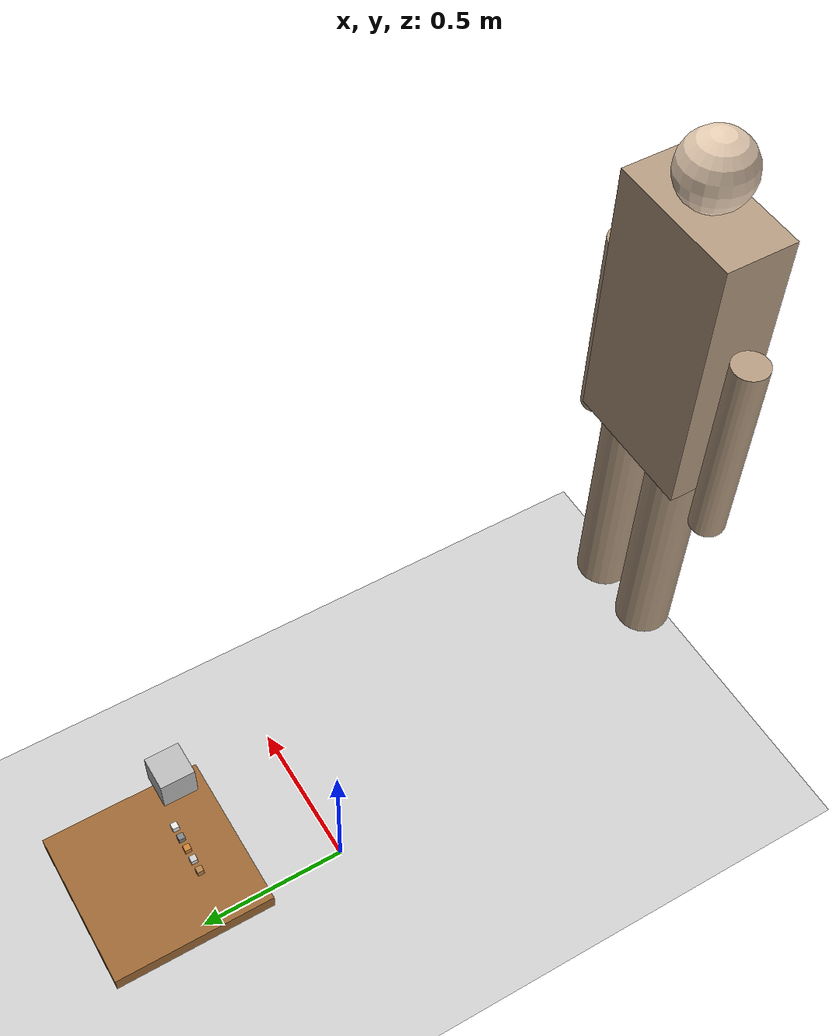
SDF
<sdf version="1.9">
 <world name="empty">
  <physics name="bullet_physics" type="bullet">
   <max_step_size>0.001</max_step_size>
   <real_time_factor>1.0</real_time_factor>
   <real_time_update_rate>1000</real_time_update_rate>
  </physics>
  <plugin filename="gz-sim-forcetorque-system" name="gz::sim::systems::ForceTorque"/>
  <plugin name="gz::sim::systems::Physics" filename="gz-sim-physics-system"/>
  <plugin name="gz::sim::systems::UserCommands" filename="gz-sim-user-commands-system"/>
  <plugin name="gz::sim::systems::SceneBroadcaster" filename="gz-sim-scene-broadcaster-system"/>
  <plugin name="gz::sim::systems::Contact" filename="gz-sim-contact-system"/>
  <gravity>0 0 -9.8</gravity>
  <magnetic_field>6e-06 2.3e-05 -4.2e-05</magnetic_field>
  <atmosphere type="adiabatic"/>
  <scene><ambient>0.4 0.4 0.4 1</ambient><background>0.7 0.7 0.7 1</background><shadows>true</shadows></scene>
  <model name="ground_plane">
   <static>true</static>
   <link name="link">
    <collision name="collision">
     <geometry><plane><normal>0 0 1</normal><size>100 100</size></plane></geometry>
    </collision>
    <visual name="visual">
     <geometry><plane><normal>0 0 1</normal><size>100 100</size></plane></geometry>
     <material>
      <ambient>0.8 0.8 0.8 1</ambient>
      <diffuse>0.8 0.8 0.8 1</diffuse>
      <specular>0.8 0.8 0.8 1</specular>
     </material>
    </visual>
    <inertial>
     <mass>1</mass>
     <inertia><ixx>1</ixx><ixy>0</ixy><ixz>0</ixz><iyy>1</iyy><iyz>0</iyz><izz>1</izz></inertia>
    </inertial>
   </link>
  </model>
  <light name="sun" type="directional">
   <pose>0 0 10 0 -0 0</pose>
   <intensity>1</intensity>
   <direction>-0.5 0.1 -0.9</direction>
   <diffuse>0.8 0.8 0.8 1</diffuse>
   <specular>0.2 0.2 0.2 1</specular>
   <attenuation>
    <range>1000</range>
    <linear>0.01</linear>
    <constant>0.90000000000000002</constant>
    <quadratic>0.001</quadratic>
   </attenuation>
   <spot><inner_angle>0</inner_angle><outer_angle>0</outer_angle><falloff>0</falloff></spot>
  </light>
  <model name="table">
   <static>true</static>
   <pose>0 0.6 0.5 0 0 0</pose>
   <link name="table_link">
    <collision name="table_collision">
     <geometry><box><size>0.5 0.5 0.05</size></box></geometry>
     <surface><friction><ode><mu>0.6</mu><mu2>0.6</mu2></ode></friction></surface>
    </collision>
    <visual name="table_visual">
     <geometry><box><size>0.5 0.5 0.05</size></box></geometry>
     <material>
      <ambient>0.6 0.4 0.2 1</ambient>
      <diffuse>0.6 0.4 0.2 1</diffuse>
      <specular>0.1 0.1 0.1 1</specular>
     </material>
    </visual>
    <inertial>
     <mass>10</mass>
     <inertia><ixx>1.25</ixx><ixy>0</ixy><ixz>0</ixz><iyy>6.25</iyy><iyz>0</iyz><izz>7</izz></inertia>
    </inertial>
   </link>
  </model>
  <model name="wood_cube">
   <pose>-0.08 0.5 0.5525 0 0 0</pose>
   <link name="wood_link">
    <collision name="wood_collision">
     <geometry><box><size>0.02 0.02 0.02</size></box></geometry>
     <surface><friction><ode><mu>0.6</mu><mu2>0.6</mu2></ode></friction></surface>
    </collision>
    <visual name="wood_visual">
     <geometry><box><size>0.02 0.02 0.02</size></box></geometry>
     <material>
      <ambient>0.7 0.5 0.3 1</ambient>
      <diffuse>0.7 0.5 0.3 1</diffuse>
      <specular>0.1 0.1 0.1 1</specular>
     </material>
    </visual>
    <inertial>
     <mass>0.0032</mass>
     <inertia>
      <ixx>1.066e-7</ixx>
      <ixy>0</ixy>
      <ixz>0</ixz>
      <iyy>1.066e-7</iyy>
      <iyz>0</iyz>
      <izz>1.066e-7</izz>
     </inertia>
    </inertial>
   </link>
  </model>
  <model name="aluminum_cube">
   <pose>-0.04 0.5 0.5525 0 0 0</pose>
   <link name="aluminum_link">
    <collision name="aluminum_collision">
     <geometry><box><size>0.02 0.02 0.02</size></box></geometry>
     <surface><friction><ode><mu>0.5</mu><mu2>0.5</mu2></ode></friction></surface>
    </collision>
    <visual name="aluminum_visual">
     <geometry><box><size>0.02 0.02 0.02</size></box></geometry>
     <material>
      <ambient>0.8 0.8 0.8 1</ambient>
      <diffuse>0.8 0.8 0.8 1</diffuse>
      <specular>0.5 0.5 0.5 1</specular>
     </material>
    </visual>
    <inertial>
     <mass>0.0108</mass>
     <inertia><ixx>3.6e-7</ixx><ixy>0</ixy><ixz>0</ixz><iyy>3.6e-7</iyy><iyz>0</iyz><izz>3.6e-7</izz></inertia>
    </inertial>
   </link>
  </model>
  <model name="copper_cube">
   <pose>0 0.5 0.5525 0 0 0</pose>
   <link name="copper_link">
    <collision name="copper_collision">
     <geometry><box><size>0.02 0.02 0.02</size></box></geometry>
     <surface><friction><ode><mu>0.5</mu><mu2>0.5</mu2></ode></friction></surface>
    </collision>
    <visual name="copper_visual">
     <geometry><box><size>0.02 0.02 0.02</size></box></geometry>
     <material>
      <ambient>0.8 0.5 0.2 1</ambient>
      <diffuse>0.8 0.5 0.2 1</diffuse>
      <specular>0.5 0.5 0.5 1</specular>
     </material>
    </visual>
    <inertial>
     <mass>0.03584</mass>
     <inertia>
      <ixx>1.194e-6</ixx>
      <ixy>0</ixy>
      <ixz>0</ixz>
      <iyy>1.194e-6</iyy>
      <iyz>0</iyz>
      <izz>1.194e-6</izz>
     </inertia>
    </inertial>
   </link>
  </model>
  <model name="iron_cube">
   <pose>0.04 0.5 0.5525 0 0 0</pose>
   <link name="iron_link">
    <collision name="iron_collision">
     <geometry><box><size>0.02 0.02 0.02</size></box></geometry>
     <surface><friction><ode><mu>0.5</mu><mu2>0.5</mu2></ode></friction></surface>
    </collision>
    <visual name="iron_visual">
     <geometry><box><size>0.02 0.02 0.02</size></box></geometry>
     <material>
      <ambient>0.5 0.5 0.5 1</ambient>
      <diffuse>0.5 0.5 0.5 1</diffuse>
      <specular>0.4 0.4 0.4 1</specular>
     </material>
    </visual>
    <inertial>
     <mass>0.03144</mass>
     <inertia>
      <ixx>1.048e-6</ixx>
      <ixy>0</ixy>
      <ixz>0</ixz>
      <iyy>1.048e-6</iyy>
      <iyz>0</iyz>
      <izz>1.048e-6</izz>
     </inertia>
    </inertial>
   </link>
  </model>
  <model name="plastic_cube">
   <pose>0.08 0.5 0.5525 0 0 0</pose>
   <link name="plastic_link">
    <collision name="plastic_collision">
     <geometry><box><size>0.02 0.02 0.02</size></box></geometry>
     <surface><friction><ode><mu>0.5</mu><mu2>0.5</mu2></ode></friction></surface>
    </collision>
    <visual name="plastic_visual">
     <geometry><box><size>0.02 0.02 0.02</size></box></geometry>
     <material>
      <ambient>0.9 0.9 0.9 1</ambient>
      <diffuse>0.9 0.9 0.9 1</diffuse>
      <specular>0.3 0.3 0.3 1</specular>
     </material>
    </visual>
    <inertial>
     <mass>0.0088</mass>
     <inertia>
      <ixx>5.867e-7</ixx>
      <ixy>0</ixy>
      <ixz>0</ixz>
      <iyy>5.867e-7</iyy>
      <iyz>0</iyz>
      <izz>5.867e-7</izz>
     </inertia>
    </inertial>
   </link>
  </model>
  <model name="human">
   <pose>0 -1 0.9 0 0 0</pose>
   <link name="torso">
    <pose>0 0 1.0 0 0 0</pose>
    <collision name="torso_collision">
     <geometry><box><size>0.4 0.2 0.8</size></box></geometry>
     <surface><friction><ode><mu>0.6</mu><mu2>0.6</mu2></ode></friction></surface>
    </collision>
    <visual name="torso_visual">
     <geometry><box><size>0.4 0.2 0.8</size></box></geometry>
     <material>
      <ambient>0.7 0.6 0.5 1</ambient>
      <diffuse>0.7 0.6 0.5 1</diffuse>
      <specular>0.1 0.1 0.1 1</specular>
     </material>
    </visual>
    <inertial>
     <mass>40</mass>
     <inertia><ixx>1.6</ixx><ixy>0</ixy><ixz>0</ixz><iyy>1.6</iyy><iyz>0</iyz><izz>0.2</izz></inertia>
    </inertial>
   </link>
   <link name="head">
    <pose>0 0 1.5 0 0 0</pose>
    <collision name="head_collision">
     <geometry><sphere><radius>0.1</radius></sphere></geometry>
     <surface><friction><ode><mu>0.6</mu><mu2>0.6</mu2></ode></friction></surface>
    </collision>
    <visual name="head_visual">
     <geometry><sphere><radius>0.1</radius></sphere></geometry>
     <material>
      <ambient>0.9 0.8 0.7 1</ambient>
      <diffuse>0.9 0.8 0.7 1</diffuse>
      <specular>0.1 0.1 0.1 1</specular>
     </material>
    </visual>
    <inertial>
     <mass>5</mass>
     <inertia><ixx>0.02</ixx><ixy>0</ixy><ixz>0</ixz><iyy>0.02</iyy><iyz>0</iyz><izz>0.02</izz></inertia>
    </inertial>
   </link>
   <link name="right_arm">
    <pose>0.25 0 0.8 0 0 0</pose>
    <collision name="right_arm_collision">
     <geometry><cylinder><radius>0.05</radius><length>0.6</length></cylinder></geometry>
     <surface><friction><ode><mu>0.6</mu><mu2>0.6</mu2></ode></friction></surface>
    </collision>
    <visual name="right_arm_visual">
     <geometry><cylinder><radius>0.05</radius><length>0.6</length></cylinder></geometry>
     <material>
      <ambient>0.7 0.6 0.5 1</ambient>
      <diffuse>0.7 0.6 0.5 1</diffuse>
      <specular>0.1 0.1 0.1 1</specular>
     </material>
    </visual>
    <inertial>
     <mass>4</mass>
     <inertia><ixx>0.08</ixx><ixy>0</ixy><ixz>0</ixz><iyy>0.08</iyy><iyz>0</iyz><izz>0.01</izz></inertia>
    </inertial>
   </link>
   <link name="left_arm">
    <pose>-0.25 0 0.8 0 0 0</pose>
    <collision name="left_arm_collision">
     <geometry><cylinder><radius>0.05</radius><length>0.6</length></cylinder></geometry>
     <surface><friction><ode><mu>0.6</mu><mu2>0.6</mu2></ode></friction></surface>
    </collision>
    <visual name="left_arm_visual">
     <geometry><cylinder><radius>0.05</radius><length>0.6</length></cylinder></geometry>
     <material>
      <ambient>0.7 0.6 0.5 1</ambient>
      <diffuse>0.7 0.6 0.5 1</diffuse>
      <specular>0.1 0.1 0.1 1</specular>
     </material>
    </visual>
    <inertial>
     <mass>4</mass>
     <inertia><ixx>0.08</ixx><ixy>0</ixy><ixz>0</ixz><iyy>0.08</iyy><iyz>0</iyz><izz>0.01</izz></inertia>
    </inertial>
   </link>
   <link name="right_leg">
    <pose>0.1 0 0.3 0 0 0</pose>
    <collision name="right_leg_collision">
     <geometry><cylinder><radius>0.08</radius><length>0.8</length></cylinder></geometry>
     <surface><friction><ode><mu>0.6</mu><mu2>0.6</mu2></ode></friction></surface>
    </collision>
    <visual name="right_leg_visual">
     <geometry><cylinder><radius>0.08</radius><length>0.8</length></cylinder></geometry>
     <material>
      <ambient>0.7 0.6 0.5 1</ambient>
      <diffuse>0.7 0.6 0.5 1</diffuse>
      <specular>0.1 0.1 0.1 1</specular>
     </material>
    </visual>
    <inertial>
     <mass>10</mass>
     <inertia><ixx>0.32</ixx><ixy>0</ixy><ixz>0</ixz><iyy>0.32</iyy><iyz>0</iyz><izz>0.03</izz></inertia>
    </inertial>
   </link>
   <link name="left_leg">
    <pose>-0.1 0 0.3 0 0 0</pose>
    <collision name="left_leg_collision">
     <geometry><cylinder><radius>0.08</radius><length>0.8</length></cylinder></geometry>
     <surface><friction><ode><mu>0.6</mu><mu2>0.6</mu2></ode></friction></surface>
    </collision>
    <visual name="left_leg_visual">
     <geometry><cylinder><radius>0.08</radius><length>0.8</length></cylinder></geometry>
     <material>
      <ambient>0.7 0.6 0.5 1</ambient>
      <diffuse>0.7 0.6 0.5 1</diffuse>
      <specular>0.1 0.1 0.1 1</specular>
     </material>
    </visual>
    <inertial>
     <mass>10</mass>
     <inertia><ixx>0.32</ixx><ixy>0</ixy><ixz>0</ixz><iyy>0.32</iyy><iyz>0</iyz><izz>0.03</izz></inertia>
    </inertial>
   </link>
   <joint name="torso_to_head" type="fixed">
    <parent>torso</parent>
    <child>head</child>
    <pose>0 0 0.5 0 0 0</pose>
   </joint>
   <joint name="torso_to_right_arm" type="fixed">
    <parent>torso</parent>
    <child>right_arm</child>
    <pose>0.25 0 -0.2 0 0 0</pose>
   </joint>
   <joint name="torso_to_left_arm" type="fixed">
    <parent>torso</parent>
    <child>left_arm</child>
    <pose>-0.25 0 -0.2 0 0 0</pose>
   </joint>
   <joint name="torso_to_right_leg" type="fixed">
    <parent>torso</parent>
    <child>right_leg</child>
    <pose>0.1 0 -0.7 0 0 0</pose>
   </joint>
   <joint name="torso_to_left_leg" type="fixed">
    <parent>torso</parent>
    <child>left_leg</child>
    <pose>-0.1 0 -0.7 0 0 0</pose>
   </joint>
  </model>
  <plugin filename="gz-sim-sensors-system" name="gz::sim::systems::Sensors">
   <render_engine>ogre2</render_engine>
  </plugin>
  <model name="camera">
   <pose>0 0.5 1.0 -1.57 0 0</pose>
   <link name="link">
    <inertial>
     <mass>0.1</mass>
     <inertia><ixx>0.000166667</ixx><iyy>0.000166667</iyy><izz>0.000166667</izz></inertia>
    </inertial>
    <collision name="collision"><geometry><box><size>0.1 0.1 0.1</size></box></geometry></collision>
    <visual name="visual"><geometry><box><size>0.1 0.1 0.1</size></box></geometry></visual>
    <sensor name="camera" type="camera">
     <camera>
      <horizontal_fov>1.047</horizontal_fov>
      <image><width>640</width><height>480</height></image>
      <clip><near>0.1</near><far>10</far></clip>
     </camera>
     <always_on>1</always_on>
     <update_rate>30</update_rate>
     <visualize>true</visualize>
     <topic>camera</topic>
    </sensor>
   </link>
  </model>
 </world>
</sdf>
